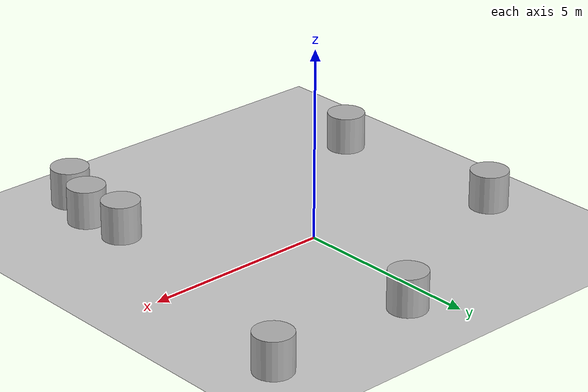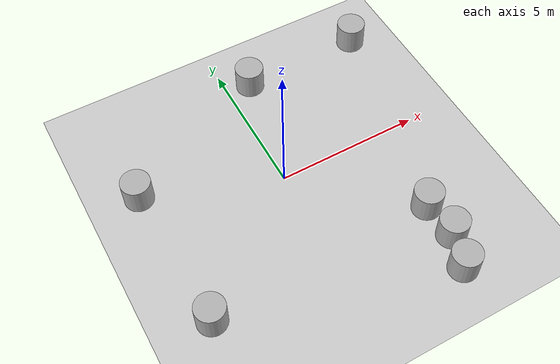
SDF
<sdf version='1.10'>
  <world name='empty'>
    <physics name='1ms' type='ignored'>
      <max_step_size>0.001</max_step_size>
      <real_time_factor>1</real_time_factor>
      <real_time_update_rate>1000</real_time_update_rate>
    </physics>
    <plugin name='gz::sim::systems::Physics' filename='gz-sim-physics-system'/>
    <plugin name='gz::sim::systems::UserCommands' filename='gz-sim-user-commands-system'/>
    <plugin name='gz::sim::systems::SceneBroadcaster' filename='gz-sim-scene-broadcaster-system'/>
    <plugin name='gz::sim::systems::Sensors' filename='gz-sim-sensors-system'>
      <render_engine>ogre2</render_engine>
    </plugin>
    <plugin name='gz::sim::systems::Contact' filename='gz-sim-contact-system'/>
    <gravity>0 0 -9.8000000000000007</gravity>
    <magnetic_field>5.5644999999999998e-06 2.2875799999999999e-05 -4.2388400000000002e-05</magnetic_field>
    <atmosphere type='adiabatic'/>
    <scene>
      <ambient>0.400000006 0.400000006 0.400000006 1</ambient>
      <background>0.699999988 0.699999988 0.699999988 1</background>
      <shadows>true</shadows>
    </scene>
    <model name='ground_plane'>
      <static>true</static>
      <link name='link'>
        <collision name='collision'>
          <geometry>
            <plane>
              <normal>0 0 1</normal>
              <size>100 100</size>
            </plane>
          </geometry>
          <surface>
            <friction>
              <ode/>
            </friction>
            <bounce/>
            <contact/>
          </surface>
        </collision>
        <visual name='visual'>
          <geometry>
            <plane>
              <normal>0 0 1</normal>
              <size>100 100</size>
            </plane>
          </geometry>
          <material>
            <ambient>0.800000012 0.800000012 0.800000012 1</ambient>
            <diffuse>0.800000012 0.800000012 0.800000012 1</diffuse>
            <specular>0.800000012 0.800000012 0.800000012 1</specular>
          </material>
        </visual>
        <pose>0 0 0 0 0 0</pose>
        <inertial>
          <pose>0 0 0 0 0 0</pose>
          <mass>1</mass>
          <inertia>
            <ixx>1</ixx>
            <ixy>0</ixy>
            <ixz>0</ixz>
            <iyy>1</iyy>
            <iyz>0</iyz>
            <izz>1</izz>
          </inertia>
        </inertial>
        <enable_wind>false</enable_wind>
      </link>
      <pose>0 0 0 0 0 0</pose>
      <self_collide>false</self_collide>
    </model>
    <model name='cylinder'>
      <pose>0.86126601696014404 4.1293520927429199 0.49999899681693183 6.7684527814430014e-20 3.0262071013942219e-19 2.2953280553418111e-20</pose>
      <link name='cylinder_link'>
        <inertial>
          <inertia>
            <ixx>0.14580000000000001</ixx>
            <ixy>0</ixy>
            <ixz>0</ixz>
            <iyy>0.14580000000000001</iyy>
            <iyz>0</iyz>
            <izz>0.125</izz>
          </inertia>
          <mass>1</mass>
          <pose>0 0 0 0 0 0</pose>
        </inertial>
        <collision name='cylinder_collision'>
          <geometry>
            <cylinder>
              <radius>0.5</radius>
              <length>1</length>
            </cylinder>
          </geometry>
          <surface>
            <friction>
              <ode/>
            </friction>
            <bounce/>
            <contact/>
          </surface>
        </collision>
        <visual name='cylinder_visual'>
          <geometry>
            <cylinder>
              <radius>0.5</radius>
              <length>1</length>
            </cylinder>
          </geometry>
          <material>
            <ambient>0.300000012 0.300000012 0.300000012 1</ambient>
            <diffuse>0.699999988 0.699999988 0.699999988 1</diffuse>
            <specular>1 1 1 1</specular>
          </material>
        </visual>
        <pose>0 0 0 0 0 0</pose>
        <enable_wind>false</enable_wind>
      </link>
      <static>false</static>
      <self_collide>false</self_collide>
    </model>
    <model name='cylinder_0'>
      <pose>3.19440738327323 -5.6593475125379085 0.49999942638036005 -3.7804750834555717e-19 -4.9878733894765409e-20 3.8340386904826679e-21</pose>
      <link name='cylinder_link'>
        <inertial>
          <inertia>
            <ixx>0.14580000000000001</ixx>
            <ixy>0</ixy>
            <ixz>0</ixz>
            <iyy>0.14580000000000001</iyy>
            <iyz>0</iyz>
            <izz>0.125</izz>
          </inertia>
          <mass>1</mass>
          <pose>0 0 0 0 0 0</pose>
        </inertial>
        <collision name='cylinder_collision'>
          <geometry>
            <cylinder>
              <radius>0.5</radius>
              <length>1</length>
            </cylinder>
          </geometry>
          <surface>
            <friction>
              <ode/>
            </friction>
            <bounce/>
            <contact/>
          </surface>
        </collision>
        <visual name='cylinder_visual'>
          <geometry>
            <cylinder>
              <radius>0.5</radius>
              <length>1</length>
            </cylinder>
          </geometry>
          <material>
            <ambient>0.300000012 0.300000012 0.300000012 1</ambient>
            <diffuse>0.699999988 0.699999988 0.699999988 1</diffuse>
            <specular>1 1 1 1</specular>
          </material>
        </visual>
        <pose>0 0 0 0 0 0</pose>
        <enable_wind>false</enable_wind>
      </link>
      <static>false</static>
      <self_collide>false</self_collide>
    </model>
    <model name='cylinder_1'>
      <pose>3.5572847755000954 -4.520778699448476 0.49999942638036005 -2.2438510256808436e-19 -3.8870321727115092e-20 3.5140235141526245e-20</pose>
      <link name='cylinder_link'>
        <inertial>
          <inertia>
            <ixx>0.14580000000000001</ixx>
            <ixy>0</ixy>
            <ixz>0</ixz>
            <iyy>0.14580000000000001</iyy>
            <iyz>0</iyz>
            <izz>0.125</izz>
          </inertia>
          <mass>1</mass>
          <pose>0 0 0 0 0 0</pose>
        </inertial>
        <collision name='cylinder_collision'>
          <geometry>
            <cylinder>
              <radius>0.5</radius>
              <length>1</length>
            </cylinder>
          </geometry>
          <surface>
            <friction>
              <ode/>
            </friction>
            <bounce/>
            <contact/>
          </surface>
        </collision>
        <visual name='cylinder_visual'>
          <geometry>
            <cylinder>
              <radius>0.5</radius>
              <length>1</length>
            </cylinder>
          </geometry>
          <material>
            <ambient>0.300000012 0.300000012 0.300000012 1</ambient>
            <diffuse>0.699999988 0.699999988 0.699999988 1</diffuse>
            <specular>1 1 1 1</specular>
          </material>
        </visual>
        <pose>0 0 0 0 0 0</pose>
        <enable_wind>false</enable_wind>
      </link>
      <static>false</static>
      <self_collide>false</self_collide>
    </model>
    <model name='cylinder_2'>
      <pose>-4.3474279971474825 -3.4467952439707386 0.49999942638036005 -1.5464536191000017e-19 3.6505824852097376e-20 -5.0701382082846061e-22</pose>
      <link name='cylinder_link'>
        <inertial>
          <inertia>
            <ixx>0.14580000000000001</ixx>
            <ixy>0</ixy>
            <ixz>0</ixz>
            <iyy>0.14580000000000001</iyy>
            <iyz>0</iyz>
            <izz>0.125</izz>
          </inertia>
          <mass>1</mass>
          <pose>0 0 0 0 0 0</pose>
        </inertial>
        <collision name='cylinder_collision'>
          <geometry>
            <cylinder>
              <radius>0.5</radius>
              <length>1</length>
            </cylinder>
          </geometry>
          <surface>
            <friction>
              <ode/>
            </friction>
            <bounce/>
            <contact/>
          </surface>
        </collision>
        <visual name='cylinder_visual'>
          <geometry>
            <cylinder>
              <radius>0.5</radius>
              <length>1</length>
            </cylinder>
          </geometry>
          <material>
            <ambient>0.300000012 0.300000012 0.300000012 1</ambient>
            <diffuse>0.699999988 0.699999988 0.699999988 1</diffuse>
            <specular>1 1 1 1</specular>
          </material>
        </visual>
        <pose>0 0 0 0 0 0</pose>
        <enable_wind>false</enable_wind>
      </link>
      <static>false</static>
      <self_collide>false</self_collide>
    </model>
    <model name='cylinder_3'>
      <pose>-4.5336721580307442 1.6110657951259451 0.49999942638036005 -1.5940160202462905e-19 -3.4564830712828582e-19 -9.6988409819852371e-21</pose>
      <link name='cylinder_link'>
        <inertial>
          <inertia>
            <ixx>0.14580000000000001</ixx>
            <ixy>0</ixy>
            <ixz>0</ixz>
            <iyy>0.14580000000000001</iyy>
            <iyz>0</iyz>
            <izz>0.125</izz>
          </inertia>
          <mass>1</mass>
          <pose>0 0 0 0 0 0</pose>
        </inertial>
        <collision name='cylinder_collision'>
          <geometry>
            <cylinder>
              <radius>0.5</radius>
              <length>1</length>
            </cylinder>
          </geometry>
          <surface>
            <friction>
              <ode/>
            </friction>
            <bounce/>
            <contact/>
          </surface>
        </collision>
        <visual name='cylinder_visual'>
          <geometry>
            <cylinder>
              <radius>0.5</radius>
              <length>1</length>
            </cylinder>
          </geometry>
          <material>
            <ambient>0.300000012 0.300000012 0.300000012 1</ambient>
            <diffuse>0.699999988 0.699999988 0.699999988 1</diffuse>
            <specular>1 1 1 1</specular>
          </material>
        </visual>
        <pose>0 0 0 0 0 0</pose>
        <enable_wind>false</enable_wind>
      </link>
      <static>false</static>
      <self_collide>false</self_collide>
    </model>
    <model name='cylinder_4'>
      <pose>5.1341804836738838 4.2099127151051823 0.49999942638036005 5.2763406530973883e-19 4.42548633168602e-19 -1.6668077591139893e-20</pose>
      <link name='cylinder_link'>
        <inertial>
          <inertia>
            <ixx>0.14580000000000001</ixx>
            <ixy>0</ixy>
            <ixz>0</ixz>
            <iyy>0.14580000000000001</iyy>
            <iyz>0</iyz>
            <izz>0.125</izz>
          </inertia>
          <mass>1</mass>
          <pose>0 0 0 0 0 0</pose>
        </inertial>
        <collision name='cylinder_collision'>
          <geometry>
            <cylinder>
              <radius>0.5</radius>
              <length>1</length>
            </cylinder>
          </geometry>
          <surface>
            <friction>
              <ode/>
            </friction>
            <bounce/>
            <contact/>
          </surface>
        </collision>
        <visual name='cylinder_visual'>
          <geometry>
            <cylinder>
              <radius>0.5</radius>
              <length>1</length>
            </cylinder>
          </geometry>
          <material>
            <ambient>0.300000012 0.300000012 0.300000012 1</ambient>
            <diffuse>0.699999988 0.699999988 0.699999988 1</diffuse>
            <specular>1 1 1 1</specular>
          </material>
        </visual>
        <pose>0 0 0 0 0 0</pose>
        <enable_wind>false</enable_wind>
      </link>
      <static>false</static>
      <self_collide>false</self_collide>
    </model>
    <model name='cylinder_5'>
      <pose>3.4651562275368271 -3.2625649690112741 0.49999942638036005 4.7695947217020626e-19 -1.7644515980969973e-20 5.6480215045730468e-21</pose>
      <link name='cylinder_link'>
        <inertial>
          <inertia>
            <ixx>0.14580000000000001</ixx>
            <ixy>0</ixy>
            <ixz>0</ixz>
            <iyy>0.14580000000000001</iyy>
            <iyz>0</iyz>
            <izz>0.125</izz>
          </inertia>
          <mass>1</mass>
          <pose>0 0 0 0 0 0</pose>
        </inertial>
        <collision name='cylinder_collision'>
          <geometry>
            <cylinder>
              <radius>0.5</radius>
              <length>1</length>
            </cylinder>
          </geometry>
          <surface>
            <friction>
              <ode/>
            </friction>
            <bounce/>
            <contact/>
          </surface>
        </collision>
        <visual name='cylinder_visual'>
          <geometry>
            <cylinder>
              <radius>0.5</radius>
              <length>1</length>
            </cylinder>
          </geometry>
          <material>
            <ambient>0.300000012 0.300000012 0.300000012 1</ambient>
            <diffuse>0.699999988 0.699999988 0.699999988 1</diffuse>
            <specular>1 1 1 1</specular>
          </material>
        </visual>
        <pose>0 0 0 0 0 0</pose>
        <enable_wind>false</enable_wind>
      </link>
      <static>false</static>
      <self_collide>false</self_collide>
    </model>
    <light name='sun' type='directional'>
      <pose>0 0 10 0 0 0</pose>
      <cast_shadows>true</cast_shadows>
      <intensity>1</intensity>
      <direction>-0.5 0.10000000000000001 -0.90000000000000002</direction>
      <diffuse>0.800000012 0.800000012 0.800000012 1</diffuse>
      <specular>0.200000003 0.200000003 0.200000003 1</specular>
      <attenuation>
        <range>1000</range>
        <linear>0.01</linear>
        <constant>0.90000000000000002</constant>
        <quadratic>0.001</quadratic>
      </attenuation>
      <spot>
        <inner_angle>0</inner_angle>
        <outer_angle>0</outer_angle>
        <falloff>0</falloff>
      </spot>
    </light>
  </world>
</sdf>
